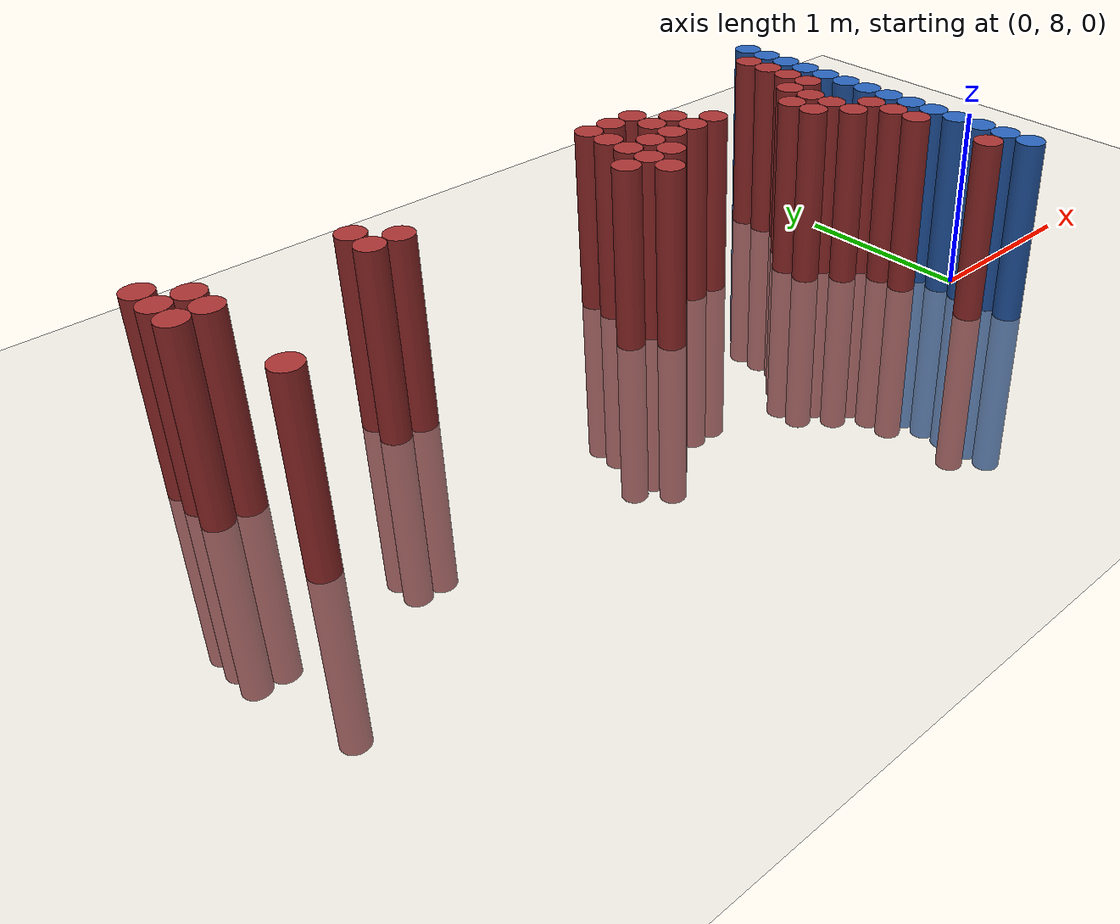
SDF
<sdf version="1.6">
 <world name="default">
  <model name="ground_plane">
   <static>1</static>
   <link name="link">
    <collision name="collision">
     <geometry><plane><normal>0 0 1</normal><size>100 100</size></plane></geometry>
     <surface><friction><ode><mu>100</mu><mu2>50</mu2></ode></friction></surface>
    </collision>
    <visual name="visual">
     <cast_shadows>0</cast_shadows>
     <geometry><plane><normal>0 0 1</normal><size>100 100</size></plane></geometry>
     <material>
      <script><uri>file://media/materials/scripts/gazebo.material</uri><name>Gazebo/Grey</name></script>
     </material>
    </visual>
   </link>
  </model>
  <model name="unit_cylinder_150">
   <static>1</static>
   <pose>-3.975000 8.925000 0.000000 0.000000 0.000000 0.000000</pose>
   <link name="link">
    <inertial>
     <mass>1</mass>
     <inertia><ixx>0.145833</ixx><ixy>0</ixy><ixz>0</ixz><iyy>0.145833</iyy><iyz>0</iyz><izz>0.125</izz></inertia>
    </inertial>
    <collision name="collision">
     <geometry><cylinder><radius>0.075000</radius><length>2</length></cylinder></geometry>
    </collision>
    <visual name="visual">
     <geometry><cylinder><radius>0.075000</radius><length>2</length></cylinder></geometry>
     <material>
      <ambient>0.648000 0.192000 0.192000 1</ambient>
      <diffuse>0.648000 0.192000 0.192000 1</diffuse>
     </material>
     <material>
      <script><name>Gazebo/Grey</name><uri>file://media/materials/scripts/gazebo.material</uri></script>
     </material>
    </visual>
   </link>
  </model>
  <model name="unit_cylinder_151">
   <static>1</static>
   <pose>-3.975000 9.075000 0.000000 0.000000 0.000000 0.000000</pose>
   <link name="link">
    <inertial>
     <mass>1</mass>
     <inertia><ixx>0.145833</ixx><ixy>0</ixy><ixz>0</ixz><iyy>0.145833</iyy><iyz>0</iyz><izz>0.125</izz></inertia>
    </inertial>
    <collision name="collision">
     <geometry><cylinder><radius>0.075000</radius><length>2</length></cylinder></geometry>
    </collision>
    <visual name="visual">
     <geometry><cylinder><radius>0.075000</radius><length>2</length></cylinder></geometry>
     <material>
      <ambient>0.648000 0.192000 0.192000 1</ambient>
      <diffuse>0.648000 0.192000 0.192000 1</diffuse>
     </material>
     <material>
      <script><name>Gazebo/Grey</name><uri>file://media/materials/scripts/gazebo.material</uri></script>
     </material>
    </visual>
   </link>
  </model>
  <model name="unit_cylinder_152">
   <static>1</static>
   <pose>-3.975000 9.225000 0.000000 0.000000 0.000000 0.000000</pose>
   <link name="link">
    <inertial>
     <mass>1</mass>
     <inertia><ixx>0.145833</ixx><ixy>0</ixy><ixz>0</ixz><iyy>0.145833</iyy><iyz>0</iyz><izz>0.125</izz></inertia>
    </inertial>
    <collision name="collision">
     <geometry><cylinder><radius>0.075000</radius><length>2</length></cylinder></geometry>
    </collision>
    <visual name="visual">
     <geometry><cylinder><radius>0.075000</radius><length>2</length></cylinder></geometry>
     <material>
      <ambient>0.648000 0.192000 0.192000 1</ambient>
      <diffuse>0.648000 0.192000 0.192000 1</diffuse>
     </material>
     <material>
      <script><name>Gazebo/Grey</name><uri>file://media/materials/scripts/gazebo.material</uri></script>
     </material>
    </visual>
   </link>
  </model>
  <model name="unit_cylinder_156">
   <static>1</static>
   <pose>-3.825000 8.325000 0.000000 0.000000 0.000000 0.000000</pose>
   <link name="link">
    <inertial>
     <mass>1</mass>
     <inertia><ixx>0.145833</ixx><ixy>0</ixy><ixz>0</ixz><iyy>0.145833</iyy><iyz>0</iyz><izz>0.125</izz></inertia>
    </inertial>
    <collision name="collision">
     <geometry><cylinder><radius>0.075000</radius><length>2</length></cylinder></geometry>
    </collision>
    <visual name="visual">
     <geometry><cylinder><radius>0.075000</radius><length>2</length></cylinder></geometry>
     <material>
      <ambient>0.648000 0.192000 0.192000 1</ambient>
      <diffuse>0.648000 0.192000 0.192000 1</diffuse>
     </material>
     <material>
      <script><name>Gazebo/Grey</name><uri>file://media/materials/scripts/gazebo.material</uri></script>
     </material>
    </visual>
   </link>
  </model>
  <model name="unit_cylinder_157">
   <static>1</static>
   <pose>-3.825000 8.925000 0.000000 0.000000 0.000000 0.000000</pose>
   <link name="link">
    <inertial>
     <mass>1</mass>
     <inertia><ixx>0.145833</ixx><ixy>0</ixy><ixz>0</ixz><iyy>0.145833</iyy><iyz>0</iyz><izz>0.125</izz></inertia>
    </inertial>
    <collision name="collision">
     <geometry><cylinder><radius>0.075000</radius><length>2</length></cylinder></geometry>
    </collision>
    <visual name="visual">
     <geometry><cylinder><radius>0.075000</radius><length>2</length></cylinder></geometry>
     <material>
      <ambient>0.648000 0.192000 0.192000 1</ambient>
      <diffuse>0.648000 0.192000 0.192000 1</diffuse>
     </material>
     <material>
      <script><name>Gazebo/Grey</name><uri>file://media/materials/scripts/gazebo.material</uri></script>
     </material>
    </visual>
   </link>
  </model>
  <model name="unit_cylinder_158">
   <static>1</static>
   <pose>-3.825000 9.075000 0.000000 0.000000 0.000000 0.000000</pose>
   <link name="link">
    <inertial>
     <mass>1</mass>
     <inertia><ixx>0.145833</ixx><ixy>0</ixy><ixz>0</ixz><iyy>0.145833</iyy><iyz>0</iyz><izz>0.125</izz></inertia>
    </inertial>
    <collision name="collision">
     <geometry><cylinder><radius>0.075000</radius><length>2</length></cylinder></geometry>
    </collision>
    <visual name="visual">
     <geometry><cylinder><radius>0.075000</radius><length>2</length></cylinder></geometry>
     <material>
      <ambient>0.648000 0.192000 0.192000 1</ambient>
      <diffuse>0.648000 0.192000 0.192000 1</diffuse>
     </material>
     <material>
      <script><name>Gazebo/Grey</name><uri>file://media/materials/scripts/gazebo.material</uri></script>
     </material>
    </visual>
   </link>
  </model>
  <model name="unit_cylinder_165">
   <static>1</static>
   <pose>-3.075000 8.925000 0.000000 0.000000 0.000000 0.000000</pose>
   <link name="link">
    <inertial>
     <mass>1</mass>
     <inertia><ixx>0.145833</ixx><ixy>0</ixy><ixz>0</ixz><iyy>0.145833</iyy><iyz>0</iyz><izz>0.125</izz></inertia>
    </inertial>
    <collision name="collision">
     <geometry><cylinder><radius>0.075000</radius><length>2</length></cylinder></geometry>
    </collision>
    <visual name="visual">
     <geometry><cylinder><radius>0.075000</radius><length>2</length></cylinder></geometry>
     <material>
      <ambient>0.648000 0.192000 0.192000 1</ambient>
      <diffuse>0.648000 0.192000 0.192000 1</diffuse>
     </material>
     <material>
      <script><name>Gazebo/Grey</name><uri>file://media/materials/scripts/gazebo.material</uri></script>
     </material>
    </visual>
   </link>
  </model>
  <model name="unit_cylinder_166">
   <static>1</static>
   <pose>-3.075000 9.075000 0.000000 0.000000 0.000000 0.000000</pose>
   <link name="link">
    <inertial>
     <mass>1</mass>
     <inertia><ixx>0.145833</ixx><ixy>0</ixy><ixz>0</ixz><iyy>0.145833</iyy><iyz>0</iyz><izz>0.125</izz></inertia>
    </inertial>
    <collision name="collision">
     <geometry><cylinder><radius>0.075000</radius><length>2</length></cylinder></geometry>
    </collision>
    <visual name="visual">
     <geometry><cylinder><radius>0.075000</radius><length>2</length></cylinder></geometry>
     <material>
      <ambient>0.648000 0.192000 0.192000 1</ambient>
      <diffuse>0.648000 0.192000 0.192000 1</diffuse>
     </material>
     <material>
      <script><name>Gazebo/Grey</name><uri>file://media/materials/scripts/gazebo.material</uri></script>
     </material>
    </visual>
   </link>
  </model>
  <model name="unit_cylinder_167">
   <static>1</static>
   <pose>-2.925000 8.925000 0.000000 0.000000 0.000000 0.000000</pose>
   <link name="link">
    <inertial>
     <mass>1</mass>
     <inertia><ixx>0.145833</ixx><ixy>0</ixy><ixz>0</ixz><iyy>0.145833</iyy><iyz>0</iyz><izz>0.125</izz></inertia>
    </inertial>
    <collision name="collision">
     <geometry><cylinder><radius>0.075000</radius><length>2</length></cylinder></geometry>
    </collision>
    <visual name="visual">
     <geometry><cylinder><radius>0.075000</radius><length>2</length></cylinder></geometry>
     <material>
      <ambient>0.648000 0.192000 0.192000 1</ambient>
      <diffuse>0.648000 0.192000 0.192000 1</diffuse>
     </material>
     <material>
      <script><name>Gazebo/Grey</name><uri>file://media/materials/scripts/gazebo.material</uri></script>
     </material>
    </visual>
   </link>
  </model>
  <model name="unit_cylinder_175">
   <static>1</static>
   <pose>-1.725000 8.775000 0.000000 0.000000 0.000000 0.000000</pose>
   <link name="link">
    <inertial>
     <mass>1</mass>
     <inertia><ixx>0.145833</ixx><ixy>0</ixy><ixz>0</ixz><iyy>0.145833</iyy><iyz>0</iyz><izz>0.125</izz></inertia>
    </inertial>
    <collision name="collision">
     <geometry><cylinder><radius>0.075000</radius><length>2</length></cylinder></geometry>
    </collision>
    <visual name="visual">
     <geometry><cylinder><radius>0.075000</radius><length>2</length></cylinder></geometry>
     <material>
      <ambient>0.648000 0.192000 0.192000 1</ambient>
      <diffuse>0.648000 0.192000 0.192000 1</diffuse>
     </material>
     <material>
      <script><name>Gazebo/Grey</name><uri>file://media/materials/scripts/gazebo.material</uri></script>
     </material>
    </visual>
   </link>
  </model>
  <model name="unit_cylinder_176">
   <static>1</static>
   <pose>-1.575000 8.625000 0.000000 0.000000 0.000000 0.000000</pose>
   <link name="link">
    <inertial>
     <mass>1</mass>
     <inertia><ixx>0.145833</ixx><ixy>0</ixy><ixz>0</ixz><iyy>0.145833</iyy><iyz>0</iyz><izz>0.125</izz></inertia>
    </inertial>
    <collision name="collision">
     <geometry><cylinder><radius>0.075000</radius><length>2</length></cylinder></geometry>
    </collision>
    <visual name="visual">
     <geometry><cylinder><radius>0.075000</radius><length>2</length></cylinder></geometry>
     <material>
      <ambient>0.648000 0.192000 0.192000 1</ambient>
      <diffuse>0.648000 0.192000 0.192000 1</diffuse>
     </material>
     <material>
      <script><name>Gazebo/Grey</name><uri>file://media/materials/scripts/gazebo.material</uri></script>
     </material>
    </visual>
   </link>
  </model>
  <model name="unit_cylinder_177">
   <static>1</static>
   <pose>-1.575000 8.775000 0.000000 0.000000 0.000000 0.000000</pose>
   <link name="link">
    <inertial>
     <mass>1</mass>
     <inertia><ixx>0.145833</ixx><ixy>0</ixy><ixz>0</ixz><iyy>0.145833</iyy><iyz>0</iyz><izz>0.125</izz></inertia>
    </inertial>
    <collision name="collision">
     <geometry><cylinder><radius>0.075000</radius><length>2</length></cylinder></geometry>
    </collision>
    <visual name="visual">
     <geometry><cylinder><radius>0.075000</radius><length>2</length></cylinder></geometry>
     <material>
      <ambient>0.648000 0.192000 0.192000 1</ambient>
      <diffuse>0.648000 0.192000 0.192000 1</diffuse>
     </material>
     <material>
      <script><name>Gazebo/Grey</name><uri>file://media/materials/scripts/gazebo.material</uri></script>
     </material>
    </visual>
   </link>
  </model>
  <model name="unit_cylinder_178">
   <static>1</static>
   <pose>-1.575000 8.925000 0.000000 0.000000 0.000000 0.000000</pose>
   <link name="link">
    <inertial>
     <mass>1</mass>
     <inertia><ixx>0.145833</ixx><ixy>0</ixy><ixz>0</ixz><iyy>0.145833</iyy><iyz>0</iyz><izz>0.125</izz></inertia>
    </inertial>
    <collision name="collision">
     <geometry><cylinder><radius>0.075000</radius><length>2</length></cylinder></geometry>
    </collision>
    <visual name="visual">
     <geometry><cylinder><radius>0.075000</radius><length>2</length></cylinder></geometry>
     <material>
      <ambient>0.648000 0.192000 0.192000 1</ambient>
      <diffuse>0.648000 0.192000 0.192000 1</diffuse>
     </material>
     <material>
      <script><name>Gazebo/Grey</name><uri>file://media/materials/scripts/gazebo.material</uri></script>
     </material>
    </visual>
   </link>
  </model>
  <model name="unit_cylinder_179">
   <static>1</static>
   <pose>-1.575000 9.075000 0.000000 0.000000 0.000000 0.000000</pose>
   <link name="link">
    <inertial>
     <mass>1</mass>
     <inertia><ixx>0.145833</ixx><ixy>0</ixy><ixz>0</ixz><iyy>0.145833</iyy><iyz>0</iyz><izz>0.125</izz></inertia>
    </inertial>
    <collision name="collision">
     <geometry><cylinder><radius>0.075000</radius><length>2</length></cylinder></geometry>
    </collision>
    <visual name="visual">
     <geometry><cylinder><radius>0.075000</radius><length>2</length></cylinder></geometry>
     <material>
      <ambient>0.648000 0.192000 0.192000 1</ambient>
      <diffuse>0.648000 0.192000 0.192000 1</diffuse>
     </material>
     <material>
      <script><name>Gazebo/Grey</name><uri>file://media/materials/scripts/gazebo.material</uri></script>
     </material>
    </visual>
   </link>
  </model>
  <model name="unit_cylinder_180">
   <static>1</static>
   <pose>-1.575000 9.225000 0.000000 0.000000 0.000000 0.000000</pose>
   <link name="link">
    <inertial>
     <mass>1</mass>
     <inertia><ixx>0.145833</ixx><ixy>0</ixy><ixz>0</ixz><iyy>0.145833</iyy><iyz>0</iyz><izz>0.125</izz></inertia>
    </inertial>
    <collision name="collision">
     <geometry><cylinder><radius>0.075000</radius><length>2</length></cylinder></geometry>
    </collision>
    <visual name="visual">
     <geometry><cylinder><radius>0.075000</radius><length>2</length></cylinder></geometry>
     <material>
      <ambient>0.648000 0.192000 0.192000 1</ambient>
      <diffuse>0.648000 0.192000 0.192000 1</diffuse>
     </material>
     <material>
      <script><name>Gazebo/Grey</name><uri>file://media/materials/scripts/gazebo.material</uri></script>
     </material>
    </visual>
   </link>
  </model>
  <model name="unit_cylinder_183">
   <static>1</static>
   <pose>-1.425000 8.775000 0.000000 0.000000 0.000000 0.000000</pose>
   <link name="link">
    <inertial>
     <mass>1</mass>
     <inertia><ixx>0.145833</ixx><ixy>0</ixy><ixz>0</ixz><iyy>0.145833</iyy><iyz>0</iyz><izz>0.125</izz></inertia>
    </inertial>
    <collision name="collision">
     <geometry><cylinder><radius>0.075000</radius><length>2</length></cylinder></geometry>
    </collision>
    <visual name="visual">
     <geometry><cylinder><radius>0.075000</radius><length>2</length></cylinder></geometry>
     <material>
      <ambient>0.648000 0.192000 0.192000 1</ambient>
      <diffuse>0.648000 0.192000 0.192000 1</diffuse>
     </material>
     <material>
      <script><name>Gazebo/Grey</name><uri>file://media/materials/scripts/gazebo.material</uri></script>
     </material>
    </visual>
   </link>
  </model>
  <model name="unit_cylinder_184">
   <static>1</static>
   <pose>-1.425000 8.925000 0.000000 0.000000 0.000000 0.000000</pose>
   <link name="link">
    <inertial>
     <mass>1</mass>
     <inertia><ixx>0.145833</ixx><ixy>0</ixy><ixz>0</ixz><iyy>0.145833</iyy><iyz>0</iyz><izz>0.125</izz></inertia>
    </inertial>
    <collision name="collision">
     <geometry><cylinder><radius>0.075000</radius><length>2</length></cylinder></geometry>
    </collision>
    <visual name="visual">
     <geometry><cylinder><radius>0.075000</radius><length>2</length></cylinder></geometry>
     <material>
      <ambient>0.648000 0.192000 0.192000 1</ambient>
      <diffuse>0.648000 0.192000 0.192000 1</diffuse>
     </material>
     <material>
      <script><name>Gazebo/Grey</name><uri>file://media/materials/scripts/gazebo.material</uri></script>
     </material>
    </visual>
   </link>
  </model>
  <model name="unit_cylinder_185">
   <static>1</static>
   <pose>-1.425000 9.225000 0.000000 0.000000 0.000000 0.000000</pose>
   <link name="link">
    <inertial>
     <mass>1</mass>
     <inertia><ixx>0.145833</ixx><ixy>0</ixy><ixz>0</ixz><iyy>0.145833</iyy><iyz>0</iyz><izz>0.125</izz></inertia>
    </inertial>
    <collision name="collision">
     <geometry><cylinder><radius>0.075000</radius><length>2</length></cylinder></geometry>
    </collision>
    <visual name="visual">
     <geometry><cylinder><radius>0.075000</radius><length>2</length></cylinder></geometry>
     <material>
      <ambient>0.648000 0.192000 0.192000 1</ambient>
      <diffuse>0.648000 0.192000 0.192000 1</diffuse>
     </material>
     <material>
      <script><name>Gazebo/Grey</name><uri>file://media/materials/scripts/gazebo.material</uri></script>
     </material>
    </visual>
   </link>
  </model>
  <model name="unit_cylinder_187">
   <static>1</static>
   <pose>-1.275000 8.925000 0.000000 0.000000 0.000000 0.000000</pose>
   <link name="link">
    <inertial>
     <mass>1</mass>
     <inertia><ixx>0.145833</ixx><ixy>0</ixy><ixz>0</ixz><iyy>0.145833</iyy><iyz>0</iyz><izz>0.125</izz></inertia>
    </inertial>
    <collision name="collision">
     <geometry><cylinder><radius>0.075000</radius><length>2</length></cylinder></geometry>
    </collision>
    <visual name="visual">
     <geometry><cylinder><radius>0.075000</radius><length>2</length></cylinder></geometry>
     <material>
      <ambient>0.648000 0.192000 0.192000 1</ambient>
      <diffuse>0.648000 0.192000 0.192000 1</diffuse>
     </material>
     <material>
      <script><name>Gazebo/Grey</name><uri>file://media/materials/scripts/gazebo.material</uri></script>
     </material>
    </visual>
   </link>
  </model>
  <model name="unit_cylinder_188">
   <static>1</static>
   <pose>-1.275000 9.075000 0.000000 0.000000 0.000000 0.000000</pose>
   <link name="link">
    <inertial>
     <mass>1</mass>
     <inertia><ixx>0.145833</ixx><ixy>0</ixy><ixz>0</ixz><iyy>0.145833</iyy><iyz>0</iyz><izz>0.125</izz></inertia>
    </inertial>
    <collision name="collision">
     <geometry><cylinder><radius>0.075000</radius><length>2</length></cylinder></geometry>
    </collision>
    <visual name="visual">
     <geometry><cylinder><radius>0.075000</radius><length>2</length></cylinder></geometry>
     <material>
      <ambient>0.648000 0.192000 0.192000 1</ambient>
      <diffuse>0.648000 0.192000 0.192000 1</diffuse>
     </material>
     <material>
      <script><name>Gazebo/Grey</name><uri>file://media/materials/scripts/gazebo.material</uri></script>
     </material>
    </visual>
   </link>
  </model>
  <model name="unit_cylinder_189">
   <static>1</static>
   <pose>-1.275000 9.225000 0.000000 0.000000 0.000000 0.000000</pose>
   <link name="link">
    <inertial>
     <mass>1</mass>
     <inertia><ixx>0.145833</ixx><ixy>0</ixy><ixz>0</ixz><iyy>0.145833</iyy><iyz>0</iyz><izz>0.125</izz></inertia>
    </inertial>
    <collision name="collision">
     <geometry><cylinder><radius>0.075000</radius><length>2</length></cylinder></geometry>
    </collision>
    <visual name="visual">
     <geometry><cylinder><radius>0.075000</radius><length>2</length></cylinder></geometry>
     <material>
      <ambient>0.648000 0.192000 0.192000 1</ambient>
      <diffuse>0.648000 0.192000 0.192000 1</diffuse>
     </material>
     <material>
      <script><name>Gazebo/Grey</name><uri>file://media/materials/scripts/gazebo.material</uri></script>
     </material>
    </visual>
   </link>
  </model>
  <model name="unit_cylinder_191">
   <static>1</static>
   <pose>-1.125000 8.925000 0.000000 0.000000 0.000000 0.000000</pose>
   <link name="link">
    <inertial>
     <mass>1</mass>
     <inertia><ixx>0.145833</ixx><ixy>0</ixy><ixz>0</ixz><iyy>0.145833</iyy><iyz>0</iyz><izz>0.125</izz></inertia>
    </inertial>
    <collision name="collision">
     <geometry><cylinder><radius>0.075000</radius><length>2</length></cylinder></geometry>
    </collision>
    <visual name="visual">
     <geometry><cylinder><radius>0.075000</radius><length>2</length></cylinder></geometry>
     <material>
      <ambient>0.648000 0.192000 0.192000 1</ambient>
      <diffuse>0.648000 0.192000 0.192000 1</diffuse>
     </material>
     <material>
      <script><name>Gazebo/Grey</name><uri>file://media/materials/scripts/gazebo.material</uri></script>
     </material>
    </visual>
   </link>
  </model>
  <model name="unit_cylinder_192">
   <static>1</static>
   <pose>-1.125000 9.075000 0.000000 0.000000 0.000000 0.000000</pose>
   <link name="link">
    <inertial>
     <mass>1</mass>
     <inertia><ixx>0.145833</ixx><ixy>0</ixy><ixz>0</ixz><iyy>0.145833</iyy><iyz>0</iyz><izz>0.125</izz></inertia>
    </inertial>
    <collision name="collision">
     <geometry><cylinder><radius>0.075000</radius><length>2</length></cylinder></geometry>
    </collision>
    <visual name="visual">
     <geometry><cylinder><radius>0.075000</radius><length>2</length></cylinder></geometry>
     <material>
      <ambient>0.648000 0.192000 0.192000 1</ambient>
      <diffuse>0.648000 0.192000 0.192000 1</diffuse>
     </material>
     <material>
      <script><name>Gazebo/Grey</name><uri>file://media/materials/scripts/gazebo.material</uri></script>
     </material>
    </visual>
   </link>
  </model>
  <model name="unit_cylinder_196">
   <static>1</static>
   <pose>-0.975000 8.925000 0.000000 0.000000 0.000000 0.000000</pose>
   <link name="link">
    <inertial>
     <mass>1</mass>
     <inertia><ixx>0.145833</ixx><ixy>0</ixy><ixz>0</ixz><iyy>0.145833</iyy><iyz>0</iyz><izz>0.125</izz></inertia>
    </inertial>
    <collision name="collision">
     <geometry><cylinder><radius>0.075000</radius><length>2</length></cylinder></geometry>
    </collision>
    <visual name="visual">
     <geometry><cylinder><radius>0.075000</radius><length>2</length></cylinder></geometry>
     <material>
      <ambient>0.648000 0.192000 0.192000 1</ambient>
      <diffuse>0.648000 0.192000 0.192000 1</diffuse>
     </material>
     <material>
      <script><name>Gazebo/Grey</name><uri>file://media/materials/scripts/gazebo.material</uri></script>
     </material>
    </visual>
   </link>
  </model>
  <model name="unit_cylinder_208">
   <static>1</static>
   <pose>-0.525000 8.625000 0.000000 0.000000 0.000000 0.000000</pose>
   <link name="link">
    <inertial>
     <mass>1</mass>
     <inertia><ixx>0.145833</ixx><ixy>0</ixy><ixz>0</ixz><iyy>0.145833</iyy><iyz>0</iyz><izz>0.125</izz></inertia>
    </inertial>
    <collision name="collision">
     <geometry><cylinder><radius>0.075000</radius><length>2</length></cylinder></geometry>
    </collision>
    <visual name="visual">
     <geometry><cylinder><radius>0.075000</radius><length>2</length></cylinder></geometry>
     <material>
      <ambient>0.648000 0.192000 0.192000 1</ambient>
      <diffuse>0.648000 0.192000 0.192000 1</diffuse>
     </material>
     <material>
      <script><name>Gazebo/Grey</name><uri>file://media/materials/scripts/gazebo.material</uri></script>
     </material>
    </visual>
   </link>
  </model>
  <model name="unit_cylinder_209">
   <static>1</static>
   <pose>-0.525000 8.775000 0.000000 0.000000 0.000000 0.000000</pose>
   <link name="link">
    <inertial>
     <mass>1</mass>
     <inertia><ixx>0.145833</ixx><ixy>0</ixy><ixz>0</ixz><iyy>0.145833</iyy><iyz>0</iyz><izz>0.125</izz></inertia>
    </inertial>
    <collision name="collision">
     <geometry><cylinder><radius>0.075000</radius><length>2</length></cylinder></geometry>
    </collision>
    <visual name="visual">
     <geometry><cylinder><radius>0.075000</radius><length>2</length></cylinder></geometry>
     <material>
      <ambient>0.648000 0.192000 0.192000 1</ambient>
      <diffuse>0.648000 0.192000 0.192000 1</diffuse>
     </material>
     <material>
      <script><name>Gazebo/Grey</name><uri>file://media/materials/scripts/gazebo.material</uri></script>
     </material>
    </visual>
   </link>
  </model>
  <model name="unit_cylinder_212">
   <static>1</static>
   <pose>-0.375000 8.475000 0.000000 0.000000 0.000000 0.000000</pose>
   <link name="link">
    <inertial>
     <mass>1</mass>
     <inertia><ixx>0.145833</ixx><ixy>0</ixy><ixz>0</ixz><iyy>0.145833</iyy><iyz>0</iyz><izz>0.125</izz></inertia>
    </inertial>
    <collision name="collision">
     <geometry><cylinder><radius>0.075000</radius><length>2</length></cylinder></geometry>
    </collision>
    <visual name="visual">
     <geometry><cylinder><radius>0.075000</radius><length>2</length></cylinder></geometry>
     <material>
      <ambient>0.648000 0.192000 0.192000 1</ambient>
      <diffuse>0.648000 0.192000 0.192000 1</diffuse>
     </material>
     <material>
      <script><name>Gazebo/Grey</name><uri>file://media/materials/scripts/gazebo.material</uri></script>
     </material>
    </visual>
   </link>
  </model>
  <model name="unit_cylinder_213">
   <static>1</static>
   <pose>-0.375000 8.625000 0.000000 0.000000 0.000000 0.000000</pose>
   <link name="link">
    <inertial>
     <mass>1</mass>
     <inertia><ixx>0.145833</ixx><ixy>0</ixy><ixz>0</ixz><iyy>0.145833</iyy><iyz>0</iyz><izz>0.125</izz></inertia>
    </inertial>
    <collision name="collision">
     <geometry><cylinder><radius>0.075000</radius><length>2</length></cylinder></geometry>
    </collision>
    <visual name="visual">
     <geometry><cylinder><radius>0.075000</radius><length>2</length></cylinder></geometry>
     <material>
      <ambient>0.648000 0.192000 0.192000 1</ambient>
      <diffuse>0.648000 0.192000 0.192000 1</diffuse>
     </material>
     <material>
      <script><name>Gazebo/Grey</name><uri>file://media/materials/scripts/gazebo.material</uri></script>
     </material>
    </visual>
   </link>
  </model>
  <model name="unit_cylinder_214">
   <static>1</static>
   <pose>-0.375000 8.775000 0.000000 0.000000 0.000000 0.000000</pose>
   <link name="link">
    <inertial>
     <mass>1</mass>
     <inertia><ixx>0.145833</ixx><ixy>0</ixy><ixz>0</ixz><iyy>0.145833</iyy><iyz>0</iyz><izz>0.125</izz></inertia>
    </inertial>
    <collision name="collision">
     <geometry><cylinder><radius>0.075000</radius><length>2</length></cylinder></geometry>
    </collision>
    <visual name="visual">
     <geometry><cylinder><radius>0.075000</radius><length>2</length></cylinder></geometry>
     <material>
      <ambient>0.648000 0.192000 0.192000 1</ambient>
      <diffuse>0.648000 0.192000 0.192000 1</diffuse>
     </material>
     <material>
      <script><name>Gazebo/Grey</name><uri>file://media/materials/scripts/gazebo.material</uri></script>
     </material>
    </visual>
   </link>
  </model>
  <model name="unit_cylinder_215">
   <static>1</static>
   <pose>-0.375000 8.925000 0.000000 0.000000 0.000000 0.000000</pose>
   <link name="link">
    <inertial>
     <mass>1</mass>
     <inertia><ixx>0.145833</ixx><ixy>0</ixy><ixz>0</ixz><iyy>0.145833</iyy><iyz>0</iyz><izz>0.125</izz></inertia>
    </inertial>
    <collision name="collision">
     <geometry><cylinder><radius>0.075000</radius><length>2</length></cylinder></geometry>
    </collision>
    <visual name="visual">
     <geometry><cylinder><radius>0.075000</radius><length>2</length></cylinder></geometry>
     <material>
      <ambient>0.648000 0.192000 0.192000 1</ambient>
      <diffuse>0.648000 0.192000 0.192000 1</diffuse>
     </material>
     <material>
      <script><name>Gazebo/Grey</name><uri>file://media/materials/scripts/gazebo.material</uri></script>
     </material>
    </visual>
   </link>
  </model>
  <model name="unit_cylinder_221">
   <static>1</static>
   <pose>-0.225000 7.725000 0.000000 0.000000 0.000000 0.000000</pose>
   <link name="link">
    <inertial>
     <mass>1</mass>
     <inertia><ixx>0.145833</ixx><ixy>0</ixy><ixz>0</ixz><iyy>0.145833</iyy><iyz>0</iyz><izz>0.125</izz></inertia>
    </inertial>
    <collision name="collision">
     <geometry><cylinder><radius>0.075000</radius><length>2</length></cylinder></geometry>
    </collision>
    <visual name="visual">
     <geometry><cylinder><radius>0.075000</radius><length>2</length></cylinder></geometry>
     <material>
      <ambient>0.648000 0.192000 0.192000 1</ambient>
      <diffuse>0.648000 0.192000 0.192000 1</diffuse>
     </material>
     <material>
      <script><name>Gazebo/Grey</name><uri>file://media/materials/scripts/gazebo.material</uri></script>
     </material>
    </visual>
   </link>
  </model>
  <model name="unit_cylinder_222">
   <static>1</static>
   <pose>-0.225000 8.175000 0.000000 0.000000 0.000000 0.000000</pose>
   <link name="link">
    <inertial>
     <mass>1</mass>
     <inertia><ixx>0.145833</ixx><ixy>0</ixy><ixz>0</ixz><iyy>0.145833</iyy><iyz>0</iyz><izz>0.125</izz></inertia>
    </inertial>
    <collision name="collision">
     <geometry><cylinder><radius>0.075000</radius><length>2</length></cylinder></geometry>
    </collision>
    <visual name="visual">
     <geometry><cylinder><radius>0.075000</radius><length>2</length></cylinder></geometry>
     <material>
      <ambient>0.648000 0.192000 0.192000 1</ambient>
      <diffuse>0.648000 0.192000 0.192000 1</diffuse>
     </material>
     <material>
      <script><name>Gazebo/Grey</name><uri>file://media/materials/scripts/gazebo.material</uri></script>
     </material>
    </visual>
   </link>
  </model>
  <model name="unit_cylinder_223">
   <static>1</static>
   <pose>-0.225000 8.325000 0.000000 0.000000 0.000000 0.000000</pose>
   <link name="link">
    <inertial>
     <mass>1</mass>
     <inertia><ixx>0.145833</ixx><ixy>0</ixy><ixz>0</ixz><iyy>0.145833</iyy><iyz>0</iyz><izz>0.125</izz></inertia>
    </inertial>
    <collision name="collision">
     <geometry><cylinder><radius>0.075000</radius><length>2</length></cylinder></geometry>
    </collision>
    <visual name="visual">
     <geometry><cylinder><radius>0.075000</radius><length>2</length></cylinder></geometry>
     <material>
      <ambient>0.648000 0.192000 0.192000 1</ambient>
      <diffuse>0.648000 0.192000 0.192000 1</diffuse>
     </material>
     <material>
      <script><name>Gazebo/Grey</name><uri>file://media/materials/scripts/gazebo.material</uri></script>
     </material>
    </visual>
   </link>
  </model>
  <model name="unit_cylinder_224">
   <static>1</static>
   <pose>-0.225000 8.475000 0.000000 0.000000 0.000000 0.000000</pose>
   <link name="link">
    <inertial>
     <mass>1</mass>
     <inertia><ixx>0.145833</ixx><ixy>0</ixy><ixz>0</ixz><iyy>0.145833</iyy><iyz>0</iyz><izz>0.125</izz></inertia>
    </inertial>
    <collision name="collision">
     <geometry><cylinder><radius>0.075000</radius><length>2</length></cylinder></geometry>
    </collision>
    <visual name="visual">
     <geometry><cylinder><radius>0.075000</radius><length>2</length></cylinder></geometry>
     <material>
      <ambient>0.648000 0.192000 0.192000 1</ambient>
      <diffuse>0.648000 0.192000 0.192000 1</diffuse>
     </material>
     <material>
      <script><name>Gazebo/Grey</name><uri>file://media/materials/scripts/gazebo.material</uri></script>
     </material>
    </visual>
   </link>
  </model>
  <model name="unit_cylinder_225">
   <static>1</static>
   <pose>-0.225000 8.925000 0.000000 0.000000 0.000000 0.000000</pose>
   <link name="link">
    <inertial>
     <mass>1</mass>
     <inertia><ixx>0.145833</ixx><ixy>0</ixy><ixz>0</ixz><iyy>0.145833</iyy><iyz>0</iyz><izz>0.125</izz></inertia>
    </inertial>
    <collision name="collision">
     <geometry><cylinder><radius>0.075000</radius><length>2</length></cylinder></geometry>
    </collision>
    <visual name="visual">
     <geometry><cylinder><radius>0.075000</radius><length>2</length></cylinder></geometry>
     <material>
      <ambient>0.648000 0.192000 0.192000 1</ambient>
      <diffuse>0.648000 0.192000 0.192000 1</diffuse>
     </material>
     <material>
      <script><name>Gazebo/Grey</name><uri>file://media/materials/scripts/gazebo.material</uri></script>
     </material>
    </visual>
   </link>
  </model>
  <model name="unit_cylinder_226">
   <static>1</static>
   <pose>-0.225000 9.075000 0.000000 0.000000 0.000000 0.000000</pose>
   <link name="link">
    <inertial>
     <mass>1</mass>
     <inertia><ixx>0.145833</ixx><ixy>0</ixy><ixz>0</ixz><iyy>0.145833</iyy><iyz>0</iyz><izz>0.125</izz></inertia>
    </inertial>
    <collision name="collision">
     <geometry><cylinder><radius>0.075000</radius><length>2</length></cylinder></geometry>
    </collision>
    <visual name="visual">
     <geometry><cylinder><radius>0.075000</radius><length>2</length></cylinder></geometry>
     <material>
      <ambient>0.648000 0.192000 0.192000 1</ambient>
      <diffuse>0.648000 0.192000 0.192000 1</diffuse>
     </material>
     <material>
      <script><name>Gazebo/Grey</name><uri>file://media/materials/scripts/gazebo.material</uri></script>
     </material>
    </visual>
   </link>
  </model>
  <model name="unit_cylinder_227">
   <static>1</static>
   <pose>-0.225000 9.225000 0.000000 0.000000 0.000000 0.000000</pose>
   <link name="link">
    <inertial>
     <mass>1</mass>
     <inertia><ixx>0.145833</ixx><ixy>0</ixy><ixz>0</ixz><iyy>0.145833</iyy><iyz>0</iyz><izz>0.125</izz></inertia>
    </inertial>
    <collision name="collision">
     <geometry><cylinder><radius>0.075000</radius><length>2</length></cylinder></geometry>
    </collision>
    <visual name="visual">
     <geometry><cylinder><radius>0.075000</radius><length>2</length></cylinder></geometry>
     <material>
      <ambient>0.648000 0.192000 0.192000 1</ambient>
      <diffuse>0.648000 0.192000 0.192000 1</diffuse>
     </material>
     <material>
      <script><name>Gazebo/Grey</name><uri>file://media/materials/scripts/gazebo.material</uri></script>
     </material>
    </visual>
   </link>
  </model>
  <model name="unit_cylinder_228">
   <static>1</static>
   <pose>-0.225000 9.375000 0.000000 0.000000 0.000000 0.000000</pose>
   <link name="link">
    <inertial>
     <mass>1</mass>
     <inertia><ixx>0.145833</ixx><ixy>0</ixy><ixz>0</ixz><iyy>0.145833</iyy><iyz>0</iyz><izz>0.125</izz></inertia>
    </inertial>
    <collision name="collision">
     <geometry><cylinder><radius>0.075000</radius><length>2</length></cylinder></geometry>
    </collision>
    <visual name="visual">
     <geometry><cylinder><radius>0.075000</radius><length>2</length></cylinder></geometry>
     <material>
      <ambient>0.648000 0.192000 0.192000 1</ambient>
      <diffuse>0.648000 0.192000 0.192000 1</diffuse>
     </material>
     <material>
      <script><name>Gazebo/Grey</name><uri>file://media/materials/scripts/gazebo.material</uri></script>
     </material>
    </visual>
   </link>
  </model>
  <model name="unit_cylinder_245">
   <static>1</static>
   <pose>-0.075000 7.575000 0.000000 0.000000 0.000000 0.000000</pose>
   <link name="link">
    <inertial>
     <mass>1</mass>
     <inertia><ixx>0.145833</ixx><ixy>0</ixy><ixz>0</ixz><iyy>0.145833</iyy><iyz>0</iyz><izz>0.125</izz></inertia>
    </inertial>
    <collision name="collision">
     <geometry><cylinder><radius>0.075000</radius><length>2</length></cylinder></geometry>
    </collision>
    <visual name="visual">
     <geometry><cylinder><radius>0.075000</radius><length>2</length></cylinder></geometry>
     <material>
      <ambient>0.152000 0.379000 0.720000 1</ambient>
      <diffuse>0.152000 0.379000 0.720000 1</diffuse>
     </material>
     <material>
      <script><name>Gazebo/Grey</name><uri>file://media/materials/scripts/gazebo.material</uri></script>
     </material>
    </visual>
   </link>
  </model>
  <model name="unit_cylinder_246">
   <static>1</static>
   <pose>-0.075000 7.725000 0.000000 0.000000 0.000000 0.000000</pose>
   <link name="link">
    <inertial>
     <mass>1</mass>
     <inertia><ixx>0.145833</ixx><ixy>0</ixy><ixz>0</ixz><iyy>0.145833</iyy><iyz>0</iyz><izz>0.125</izz></inertia>
    </inertial>
    <collision name="collision">
     <geometry><cylinder><radius>0.075000</radius><length>2</length></cylinder></geometry>
    </collision>
    <visual name="visual">
     <geometry><cylinder><radius>0.075000</radius><length>2</length></cylinder></geometry>
     <material>
      <ambient>0.152000 0.379000 0.720000 1</ambient>
      <diffuse>0.152000 0.379000 0.720000 1</diffuse>
     </material>
     <material>
      <script><name>Gazebo/Grey</name><uri>file://media/materials/scripts/gazebo.material</uri></script>
     </material>
    </visual>
   </link>
  </model>
  <model name="unit_cylinder_247">
   <static>1</static>
   <pose>-0.075000 7.875000 0.000000 0.000000 0.000000 0.000000</pose>
   <link name="link">
    <inertial>
     <mass>1</mass>
     <inertia><ixx>0.145833</ixx><ixy>0</ixy><ixz>0</ixz><iyy>0.145833</iyy><iyz>0</iyz><izz>0.125</izz></inertia>
    </inertial>
    <collision name="collision">
     <geometry><cylinder><radius>0.075000</radius><length>2</length></cylinder></geometry>
    </collision>
    <visual name="visual">
     <geometry><cylinder><radius>0.075000</radius><length>2</length></cylinder></geometry>
     <material>
      <ambient>0.152000 0.379000 0.720000 1</ambient>
      <diffuse>0.152000 0.379000 0.720000 1</diffuse>
     </material>
     <material>
      <script><name>Gazebo/Grey</name><uri>file://media/materials/scripts/gazebo.material</uri></script>
     </material>
    </visual>
   </link>
  </model>
  <model name="unit_cylinder_248">
   <static>1</static>
   <pose>-0.075000 8.025000 0.000000 0.000000 0.000000 0.000000</pose>
   <link name="link">
    <inertial>
     <mass>1</mass>
     <inertia><ixx>0.145833</ixx><ixy>0</ixy><ixz>0</ixz><iyy>0.145833</iyy><iyz>0</iyz><izz>0.125</izz></inertia>
    </inertial>
    <collision name="collision">
     <geometry><cylinder><radius>0.075000</radius><length>2</length></cylinder></geometry>
    </collision>
    <visual name="visual">
     <geometry><cylinder><radius>0.075000</radius><length>2</length></cylinder></geometry>
     <material>
      <ambient>0.152000 0.379000 0.720000 1</ambient>
      <diffuse>0.152000 0.379000 0.720000 1</diffuse>
     </material>
     <material>
      <script><name>Gazebo/Grey</name><uri>file://media/materials/scripts/gazebo.material</uri></script>
     </material>
    </visual>
   </link>
  </model>
  <model name="unit_cylinder_249">
   <static>1</static>
   <pose>-0.075000 8.175000 0.000000 0.000000 0.000000 0.000000</pose>
   <link name="link">
    <inertial>
     <mass>1</mass>
     <inertia><ixx>0.145833</ixx><ixy>0</ixy><ixz>0</ixz><iyy>0.145833</iyy><iyz>0</iyz><izz>0.125</izz></inertia>
    </inertial>
    <collision name="collision">
     <geometry><cylinder><radius>0.075000</radius><length>2</length></cylinder></geometry>
    </collision>
    <visual name="visual">
     <geometry><cylinder><radius>0.075000</radius><length>2</length></cylinder></geometry>
     <material>
      <ambient>0.152000 0.379000 0.720000 1</ambient>
      <diffuse>0.152000 0.379000 0.720000 1</diffuse>
     </material>
     <material>
      <script><name>Gazebo/Grey</name><uri>file://media/materials/scripts/gazebo.material</uri></script>
     </material>
    </visual>
   </link>
  </model>
  <model name="unit_cylinder_250">
   <static>1</static>
   <pose>-0.075000 8.325000 0.000000 0.000000 0.000000 0.000000</pose>
   <link name="link">
    <inertial>
     <mass>1</mass>
     <inertia><ixx>0.145833</ixx><ixy>0</ixy><ixz>0</ixz><iyy>0.145833</iyy><iyz>0</iyz><izz>0.125</izz></inertia>
    </inertial>
    <collision name="collision">
     <geometry><cylinder><radius>0.075000</radius><length>2</length></cylinder></geometry>
    </collision>
    <visual name="visual">
     <geometry><cylinder><radius>0.075000</radius><length>2</length></cylinder></geometry>
     <material>
      <ambient>0.152000 0.379000 0.720000 1</ambient>
      <diffuse>0.152000 0.379000 0.720000 1</diffuse>
     </material>
     <material>
      <script><name>Gazebo/Grey</name><uri>file://media/materials/scripts/gazebo.material</uri></script>
     </material>
    </visual>
   </link>
  </model>
  <model name="unit_cylinder_251">
   <static>1</static>
   <pose>-0.075000 8.475000 0.000000 0.000000 0.000000 0.000000</pose>
   <link name="link">
    <inertial>
     <mass>1</mass>
     <inertia><ixx>0.145833</ixx><ixy>0</ixy><ixz>0</ixz><iyy>0.145833</iyy><iyz>0</iyz><izz>0.125</izz></inertia>
    </inertial>
    <collision name="collision">
     <geometry><cylinder><radius>0.075000</radius><length>2</length></cylinder></geometry>
    </collision>
    <visual name="visual">
     <geometry><cylinder><radius>0.075000</radius><length>2</length></cylinder></geometry>
     <material>
      <ambient>0.152000 0.379000 0.720000 1</ambient>
      <diffuse>0.152000 0.379000 0.720000 1</diffuse>
     </material>
     <material>
      <script><name>Gazebo/Grey</name><uri>file://media/materials/scripts/gazebo.material</uri></script>
     </material>
    </visual>
   </link>
  </model>
  <model name="unit_cylinder_252">
   <static>1</static>
   <pose>-0.075000 8.625000 0.000000 0.000000 0.000000 0.000000</pose>
   <link name="link">
    <inertial>
     <mass>1</mass>
     <inertia><ixx>0.145833</ixx><ixy>0</ixy><ixz>0</ixz><iyy>0.145833</iyy><iyz>0</iyz><izz>0.125</izz></inertia>
    </inertial>
    <collision name="collision">
     <geometry><cylinder><radius>0.075000</radius><length>2</length></cylinder></geometry>
    </collision>
    <visual name="visual">
     <geometry><cylinder><radius>0.075000</radius><length>2</length></cylinder></geometry>
     <material>
      <ambient>0.152000 0.379000 0.720000 1</ambient>
      <diffuse>0.152000 0.379000 0.720000 1</diffuse>
     </material>
     <material>
      <script><name>Gazebo/Grey</name><uri>file://media/materials/scripts/gazebo.material</uri></script>
     </material>
    </visual>
   </link>
  </model>
  <model name="unit_cylinder_253">
   <static>1</static>
   <pose>-0.075000 8.775000 0.000000 0.000000 0.000000 0.000000</pose>
   <link name="link">
    <inertial>
     <mass>1</mass>
     <inertia><ixx>0.145833</ixx><ixy>0</ixy><ixz>0</ixz><iyy>0.145833</iyy><iyz>0</iyz><izz>0.125</izz></inertia>
    </inertial>
    <collision name="collision">
     <geometry><cylinder><radius>0.075000</radius><length>2</length></cylinder></geometry>
    </collision>
    <visual name="visual">
     <geometry><cylinder><radius>0.075000</radius><length>2</length></cylinder></geometry>
     <material>
      <ambient>0.152000 0.379000 0.720000 1</ambient>
      <diffuse>0.152000 0.379000 0.720000 1</diffuse>
     </material>
     <material>
      <script><name>Gazebo/Grey</name><uri>file://media/materials/scripts/gazebo.material</uri></script>
     </material>
    </visual>
   </link>
  </model>
  <model name="unit_cylinder_254">
   <static>1</static>
   <pose>-0.075000 8.925000 0.000000 0.000000 0.000000 0.000000</pose>
   <link name="link">
    <inertial>
     <mass>1</mass>
     <inertia><ixx>0.145833</ixx><ixy>0</ixy><ixz>0</ixz><iyy>0.145833</iyy><iyz>0</iyz><izz>0.125</izz></inertia>
    </inertial>
    <collision name="collision">
     <geometry><cylinder><radius>0.075000</radius><length>2</length></cylinder></geometry>
    </collision>
    <visual name="visual">
     <geometry><cylinder><radius>0.075000</radius><length>2</length></cylinder></geometry>
     <material>
      <ambient>0.152000 0.379000 0.720000 1</ambient>
      <diffuse>0.152000 0.379000 0.720000 1</diffuse>
     </material>
     <material>
      <script><name>Gazebo/Grey</name><uri>file://media/materials/scripts/gazebo.material</uri></script>
     </material>
    </visual>
   </link>
  </model>
  <model name="unit_cylinder_255">
   <static>1</static>
   <pose>-0.075000 9.075000 0.000000 0.000000 0.000000 0.000000</pose>
   <link name="link">
    <inertial>
     <mass>1</mass>
     <inertia><ixx>0.145833</ixx><ixy>0</ixy><ixz>0</ixz><iyy>0.145833</iyy><iyz>0</iyz><izz>0.125</izz></inertia>
    </inertial>
    <collision name="collision">
     <geometry><cylinder><radius>0.075000</radius><length>2</length></cylinder></geometry>
    </collision>
    <visual name="visual">
     <geometry><cylinder><radius>0.075000</radius><length>2</length></cylinder></geometry>
     <material>
      <ambient>0.152000 0.379000 0.720000 1</ambient>
      <diffuse>0.152000 0.379000 0.720000 1</diffuse>
     </material>
     <material>
      <script><name>Gazebo/Grey</name><uri>file://media/materials/scripts/gazebo.material</uri></script>
     </material>
    </visual>
   </link>
  </model>
  <model name="unit_cylinder_256">
   <static>1</static>
   <pose>-0.075000 9.225000 0.000000 0.000000 0.000000 0.000000</pose>
   <link name="link">
    <inertial>
     <mass>1</mass>
     <inertia><ixx>0.145833</ixx><ixy>0</ixy><ixz>0</ixz><iyy>0.145833</iyy><iyz>0</iyz><izz>0.125</izz></inertia>
    </inertial>
    <collision name="collision">
     <geometry><cylinder><radius>0.075000</radius><length>2</length></cylinder></geometry>
    </collision>
    <visual name="visual">
     <geometry><cylinder><radius>0.075000</radius><length>2</length></cylinder></geometry>
     <material>
      <ambient>0.152000 0.379000 0.720000 1</ambient>
      <diffuse>0.152000 0.379000 0.720000 1</diffuse>
     </material>
     <material>
      <script><name>Gazebo/Grey</name><uri>file://media/materials/scripts/gazebo.material</uri></script>
     </material>
    </visual>
   </link>
  </model>
  <model name="unit_cylinder_257">
   <static>1</static>
   <pose>-0.075000 9.375000 0.000000 0.000000 0.000000 0.000000</pose>
   <link name="link">
    <inertial>
     <mass>1</mass>
     <inertia><ixx>0.145833</ixx><ixy>0</ixy><ixz>0</ixz><iyy>0.145833</iyy><iyz>0</iyz><izz>0.125</izz></inertia>
    </inertial>
    <collision name="collision">
     <geometry><cylinder><radius>0.075000</radius><length>2</length></cylinder></geometry>
    </collision>
    <visual name="visual">
     <geometry><cylinder><radius>0.075000</radius><length>2</length></cylinder></geometry>
     <material>
      <ambient>0.152000 0.379000 0.720000 1</ambient>
      <diffuse>0.152000 0.379000 0.720000 1</diffuse>
     </material>
     <material>
      <script><name>Gazebo/Grey</name><uri>file://media/materials/scripts/gazebo.material</uri></script>
     </material>
    </visual>
   </link>
  </model>
  <model name="unit_cylinder_258">
   <static>1</static>
   <pose>-0.075000 9.525000 0.000000 0.000000 0.000000 0.000000</pose>
   <link name="link">
    <inertial>
     <mass>1</mass>
     <inertia><ixx>0.145833</ixx><ixy>0</ixy><ixz>0</ixz><iyy>0.145833</iyy><iyz>0</iyz><izz>0.125</izz></inertia>
    </inertial>
    <collision name="collision">
     <geometry><cylinder><radius>0.075000</radius><length>2</length></cylinder></geometry>
    </collision>
    <visual name="visual">
     <geometry><cylinder><radius>0.075000</radius><length>2</length></cylinder></geometry>
     <material>
      <ambient>0.152000 0.379000 0.720000 1</ambient>
      <diffuse>0.152000 0.379000 0.720000 1</diffuse>
     </material>
     <material>
      <script><name>Gazebo/Grey</name><uri>file://media/materials/scripts/gazebo.material</uri></script>
     </material>
    </visual>
   </link>
  </model>
 </world>
</sdf>
